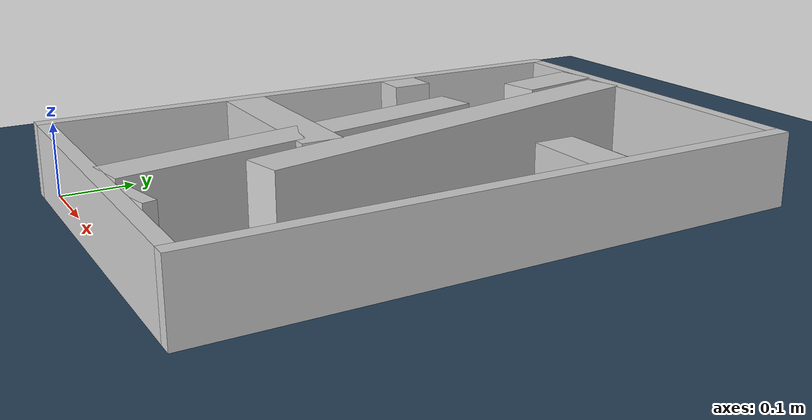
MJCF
<?xml version="1.0" ?>
<mujoco model="generated_real_template">
  <compiler angle="degree"/>
  <option timestep="0.002" integrator="implicitfast" iterations="100" cone="elliptic"/>
  <default>
    <geom density="1"/>
  </default>
  <asset>
    <texture builtin="gradient" height="3072" rgb1="0.3 0.5 0.7" rgb2="0 0 0" type="skybox" width="512"/>
    <texture builtin="checker" height="300" mark="edge" markrgb="0.8 0.8 0.8" name="groundplane" rgb1="0.2 0.3 0.4" rgb2="0.1 0.2 0.3" type="2d" width="300"/>
    <material name="groundplane" reflectance="0.2" texrepeat="5 5" texture="groundplane" texuniform="true"/>
  </asset>
  <worldbody>
    <light dir="0 0 -1" directional="true" pos="0 0 1.5"/>
    <geom name="floor" type="plane" condim="4" friction="0.5 0.005 0.001" material="groundplane" size="0 0 0.05"/>
    <body name="walls">
      <geom name="wall_boundary_left" type="box" condim="4" friction="1.0 0.005 0.0001" rgba="0.8 0.8 0.8 1" pos="-0.010000 0.387500 0.050000" euler="0 0 0.000000" size="0.010000 0.407500 0.050000"/>
      <geom name="wall_boundary_right" type="box" condim="4" friction="1.0 0.005 0.0001" rgba="0.8 0.8 0.8 1" pos="0.500000 0.387500 0.050000" euler="0 0 0.000000" size="0.010000 0.407500 0.050000"/>
      <geom name="wall_boundary_bottom" type="box" condim="4" friction="1.0 0.005 0.0001" rgba="0.8 0.8 0.8 1" pos="0.245000 -0.010000 0.050000" euler="0 0 0.000000" size="0.245000 0.010000 0.050000"/>
      <geom name="wall_boundary_top" type="box" condim="4" friction="1.0 0.005 0.0001" rgba="0.8 0.8 0.8 1" pos="0.245000 0.785000 0.050000" euler="0 0 0.000000" size="0.245000 0.010000 0.050000"/>
      <geom name="wall_inner_1_1" type="box" condim="4" friction="1.0 0.005 0.0001" rgba="0.8 0.8 0.8 1" pos="0.240139 0.468279 0.050000" euler="0 0 -77.885081" size="0.313708 0.028500 0.050000"/>
      <geom name="wall_inner_1_2" type="box" condim="4" friction="1.0 0.005 0.0001" rgba="0.8 0.8 0.8 1" pos="0.338837 0.008478 0.050000" euler="0 0 -77.885081" size="0.008671 0.028500 0.050000"/>
      <geom name="wall_inner_2_1" type="box" condim="4" friction="1.0 0.005 0.0001" rgba="0.8 0.8 0.8 1" pos="0.125250 0.267941 0.050000" euler="0 0 0.000000" size="0.125250 0.028500 0.050000"/>
      <geom name="wall_inner_2_2" type="box" condim="4" friction="1.0 0.005 0.0001" rgba="0.8 0.8 0.8 1" pos="0.489737 0.267941 0.050000" euler="0 0 0.000000" size="0.000263 0.028500 0.050000"/>
      <geom name="wall_inner_3_1" type="box" condim="4" friction="1.0 0.005 0.0001" rgba="0.8 0.8 0.8 1" pos="0.199717 0.261547 0.050000" euler="0 0 99.957991" size="0.265548 0.028500 0.050000"/>
      <geom name="wall_inner_3_2" type="box" condim="4" friction="1.0 0.005 0.0001" rgba="0.8 0.8 0.8 1" pos="0.120734 0.711412 0.050000" euler="0 0 99.957991" size="0.064560 0.028500 0.050000"/>
      <geom name="wall_inner_4_1" type="box" condim="4" friction="1.0 0.005 0.0001" rgba="0.8 0.8 0.8 1" pos="0.023144 0.516519 0.050000" euler="0 0 0.000000" size="0.023144 0.028500 0.050000"/>
      <geom name="wall_inner_4_2" type="box" condim="4" friction="1.0 0.005 0.0001" rgba="0.8 0.8 0.8 1" pos="0.439318 0.516519 0.050000" euler="0 0 0.000000" size="0.050682 0.028500 0.050000"/>
    </body>
  </worldbody>
</mujoco>
